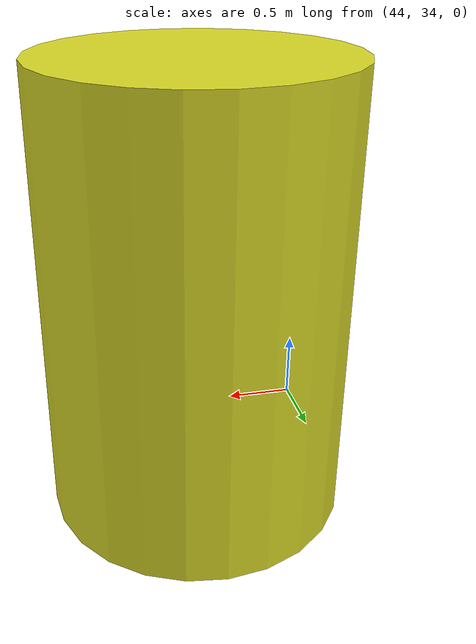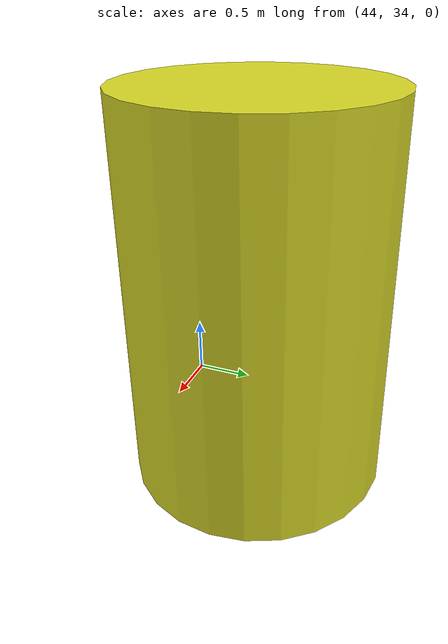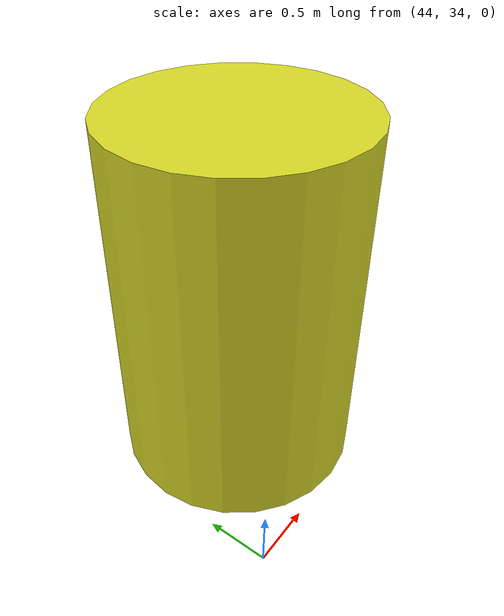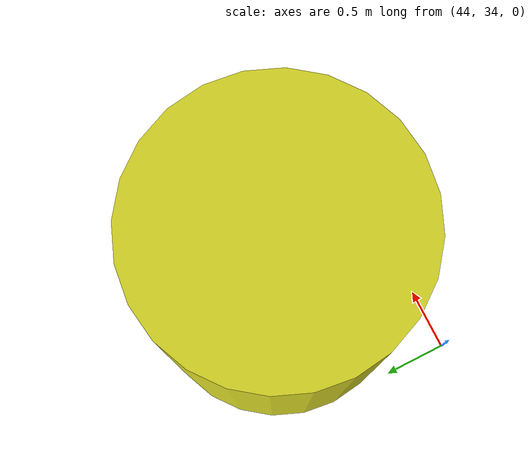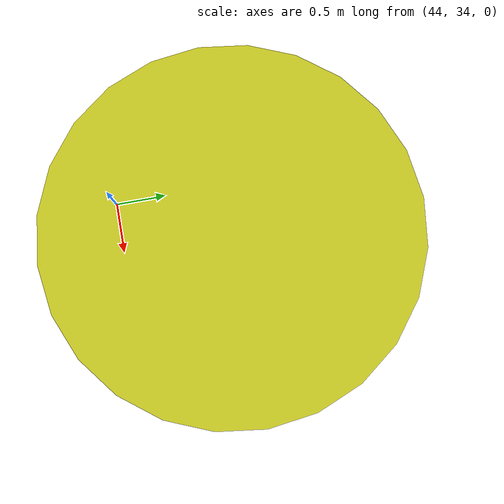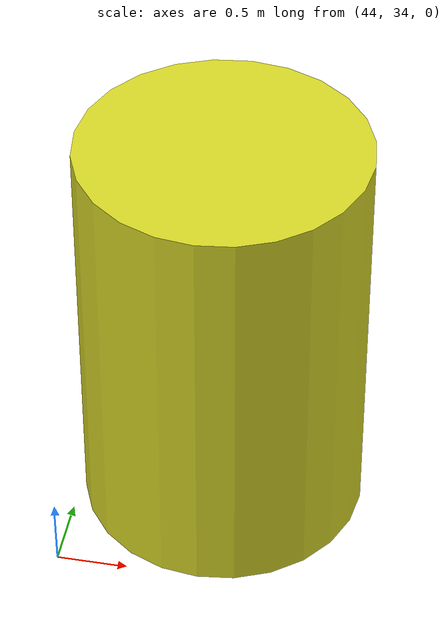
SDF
<sdf version="1.9">
 <world name="flat_rural_phototex_600m_noon_wind5ms">
  <model name="field_marker_a">
   <static>true</static>
   <pose>45 35 1.5 0 0 0</pose>
   <link name="link">
    <collision name="collision">
     <geometry><cylinder><radius>1</radius><length>3</length></cylinder></geometry>
    </collision>
    <visual name="visual">
     <geometry><cylinder><radius>1</radius><length>3</length></cylinder></geometry>
     <material>
      <ambient>0.850 0.850 0.150 1.000</ambient>
      <diffuse>0.850 0.850 0.150 1.000</diffuse>
      <specular>0.05 0.05 0.05 1</specular>
     </material>
    </visual>
   </link>
  </model>
 </world>
</sdf>
